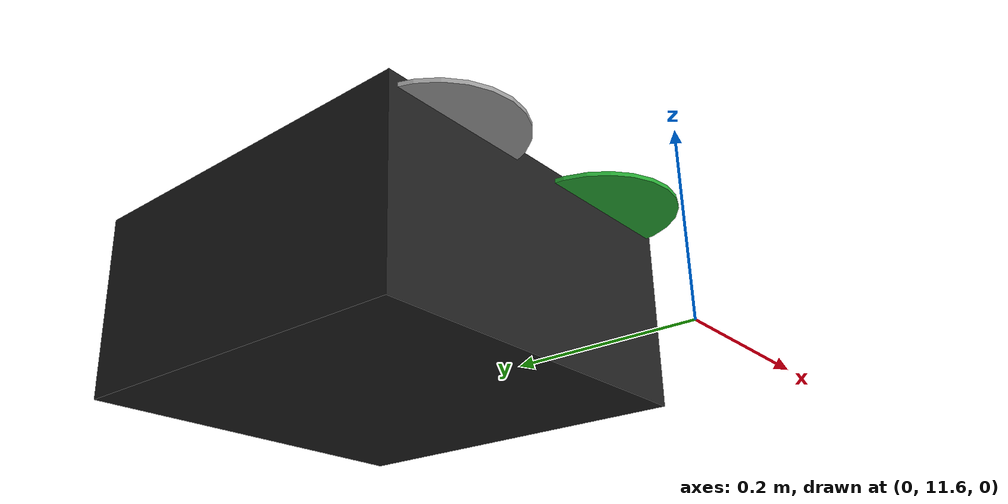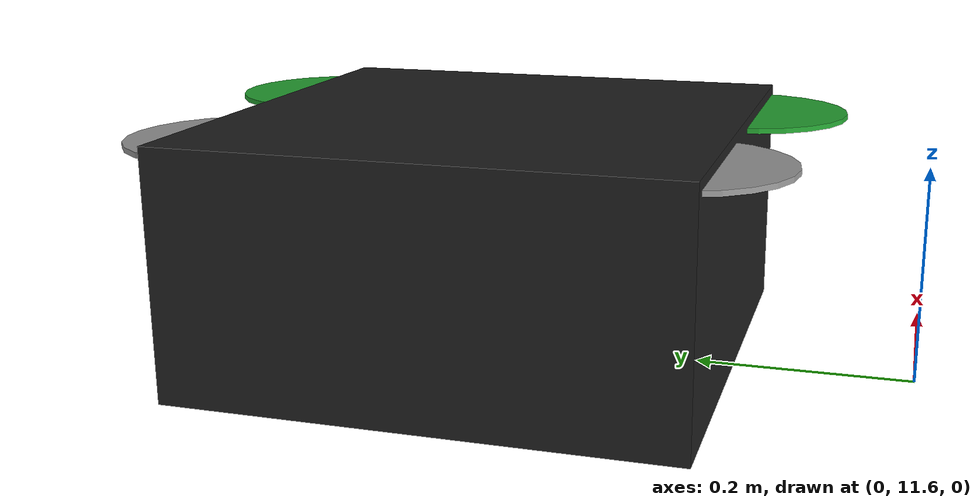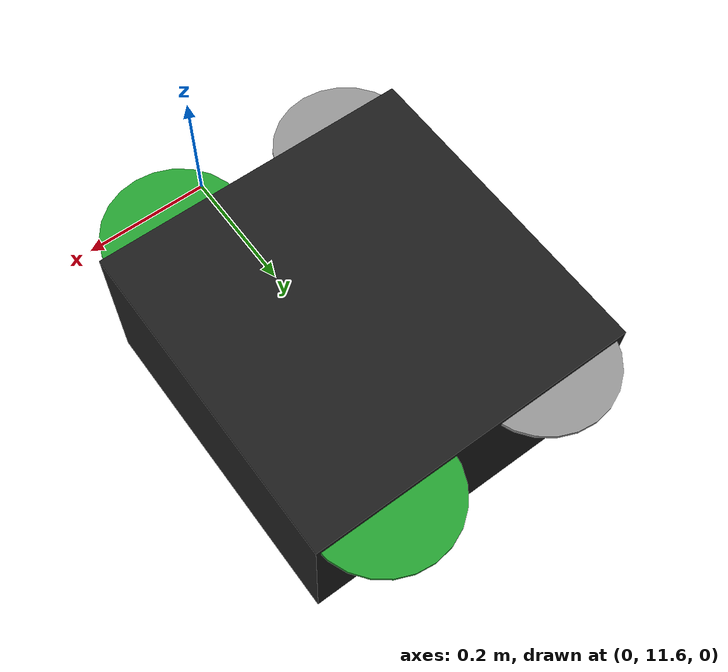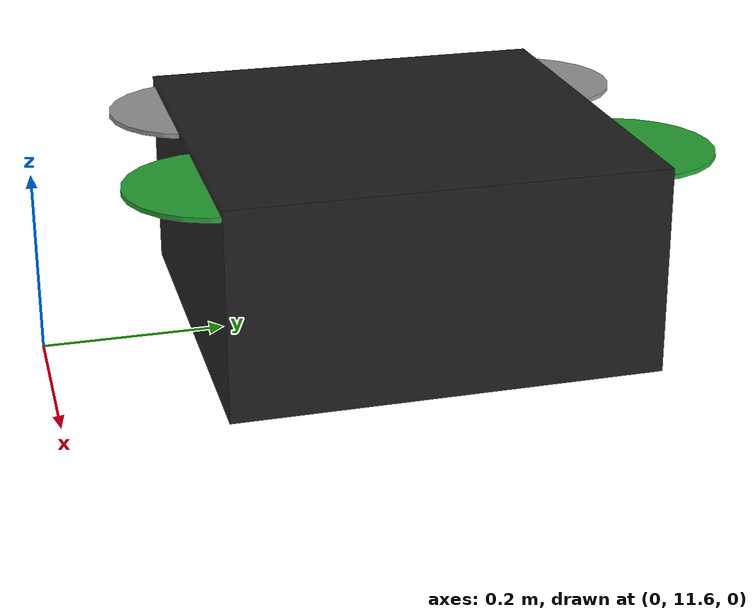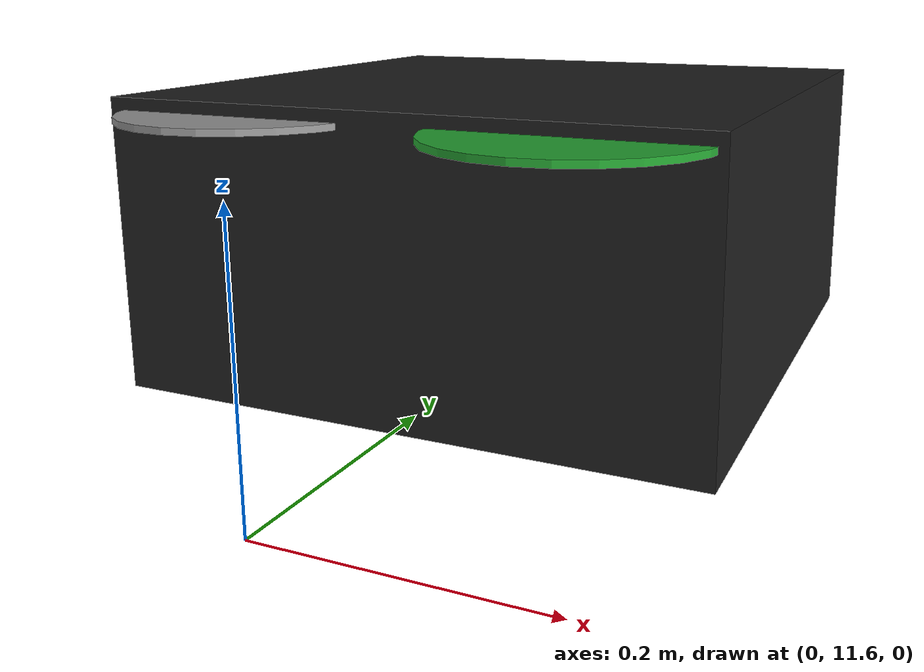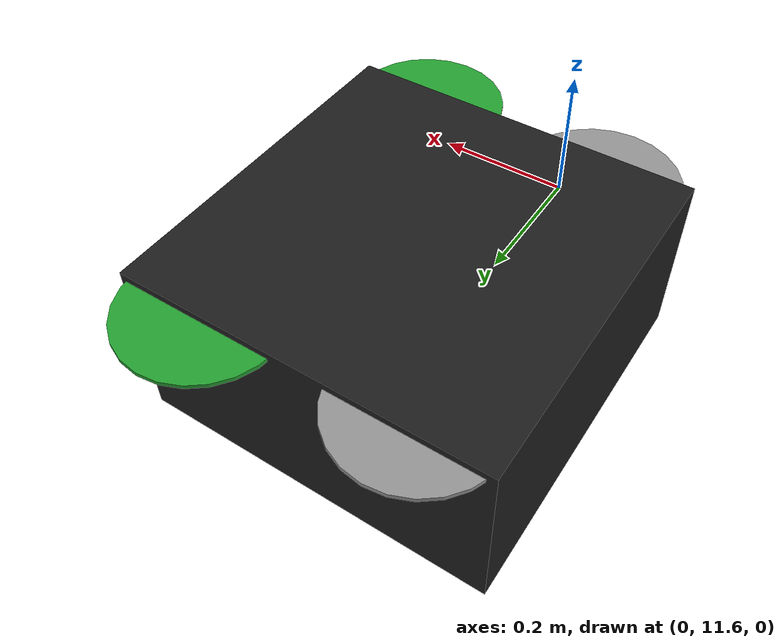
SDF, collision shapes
<?xml version='1.0'?>
<sdf version="1.6" >
  <model name="iris_demo-7">
    <include>
      <uri>model://formation/vehicle7/iris</uri>
    </include>

    <!-- plugins -->
    <plugin name="iris_demo-7-rotor_0_blade_1" filename="libLiftDragPlugin.so">
      <a0>0.3</a0>
      <alpha_stall>1.4</alpha_stall>
      <cla>4.2500</cla>
      <cda>0.10</cda>
      <cma>0.00</cma>
      <cla_stall>-0.025</cla_stall>
      <cda_stall>0.0</cda_stall>
      <cma_stall>0.0</cma_stall>
      <area>0.002</area>
      <air_density>1.2041</air_density>
      <cp>0.084 0 0</cp>
      <forward>0 1 0</forward>
      <upward>0 0 1</upward>
      <link_name>iris-7::iris-7-rotor_0</link_name>
    </plugin>
    <plugin name="iris_demo-7-rotor_0_blade_2" filename="libLiftDragPlugin.so">
      <a0>0.3</a0>
      <alpha_stall>1.4</alpha_stall>
      <cla>4.2500</cla>
      <cda>0.10</cda>
      <cma>0.00</cma>
      <cla_stall>-0.025</cla_stall>
      <cda_stall>0.0</cda_stall>
      <cma_stall>0.0</cma_stall>
      <area>0.002</area>
      <air_density>1.2041</air_density>
      <cp>-0.084 0 0</cp>
      <forward>0 -1 0</forward>
      <upward>0 0 1</upward>
      <link_name>iris-7::iris-7-rotor_0</link_name>
    </plugin>

    <plugin name="iris_demo-7-rotor_1_blade_1" filename="libLiftDragPlugin.so">
      <a0>0.3</a0>
      <alpha_stall>1.4</alpha_stall>
      <cla>4.2500</cla>
      <cda>0.10</cda>
      <cma>0.00</cma>
      <cla_stall>-0.025</cla_stall>
      <cda_stall>0.0</cda_stall>
      <cma_stall>0.0</cma_stall>
      <area>0.002</area>
      <air_density>1.2041</air_density>
      <cp>0.084 0 0</cp>
      <forward>0 1 0</forward>
      <upward>0 0 1</upward>
      <link_name>iris-7::iris-7-rotor_1</link_name>
    </plugin>
    <plugin name="iris_demo-7-rotor_1_blade_2" filename="libLiftDragPlugin.so">
      <a0>0.3</a0>
      <alpha_stall>1.4</alpha_stall>
      <cla>4.2500</cla>
      <cda>0.10</cda>
      <cma>0.00</cma>
      <cla_stall>-0.025</cla_stall>
      <cda_stall>0.0</cda_stall>
      <cma_stall>0.0</cma_stall>
      <area>0.002</area>
      <air_density>1.2041</air_density>
      <cp>-0.084 0 0</cp>
      <forward>0 -1 0</forward>
      <upward>0 0 1</upward>
      <link_name>iris-7::iris-7-rotor_1</link_name>
    </plugin>

    <plugin name="iris_demo-7-rotor_2_blade_1" filename="libLiftDragPlugin.so">
      <a0>0.3</a0>
      <alpha_stall>1.4</alpha_stall>
      <cla>4.2500</cla>
      <cda>0.10</cda>
      <cma>0.00</cma>
      <cla_stall>-0.025</cla_stall>
      <cda_stall>0.0</cda_stall>
      <cma_stall>0.0</cma_stall>
      <area>0.002</area>
      <air_density>1.2041</air_density>
      <cp>0.084 0 0</cp>
      <forward>0 -1 0</forward>
      <upward>0 0 1</upward>
      <link_name>iris-7::iris-7-rotor_2</link_name>
    </plugin>
    <plugin name="iris_demo-7-rotor_2_blade_2" filename="libLiftDragPlugin.so">
      <a0>0.3</a0>
      <alpha_stall>1.4</alpha_stall>
      <cla>4.2500</cla>
      <cda>0.10</cda>
      <cma>0.00</cma>
      <cla_stall>-0.025</cla_stall>
      <cda_stall>0.0</cda_stall>
      <cma_stall>0.0</cma_stall>
      <area>0.002</area>
      <air_density>1.2041</air_density>
      <cp>-0.084 0 0</cp>
      <forward>0 1 0</forward>
      <upward>0 0 1</upward>
      <link_name>iris-7::iris-7-rotor_2</link_name>
    </plugin>

    <plugin name="iris_demo-7-rotor_3_blade_1" filename="libLiftDragPlugin.so">
      <a0>0.3</a0>
      <alpha_stall>1.4</alpha_stall>
      <cla>4.2500</cla>
      <cda>0.10</cda>
      <cma>0.00</cma>
      <cla_stall>-0.025</cla_stall>
      <cda_stall>0.0</cda_stall>
      <cma_stall>0.0</cma_stall>
      <area>0.002</area>
      <air_density>1.2041</air_density>
      <cp>0.084 0 0</cp>
      <forward>0 -1 0</forward>
      <upward>0 0 1</upward>
      <link_name>iris-7::iris-7-rotor_3</link_name>
    </plugin>
    <plugin name="iris_demo-7-rotor_3_blade_2" filename="libLiftDragPlugin.so">
      <a0>0.3</a0>
      <alpha_stall>1.4</alpha_stall>
      <cla>4.2500</cla>
      <cda>0.10</cda>
      <cma>0.00</cma>
      <cla_stall>-0.025</cla_stall>
      <cda_stall>0.0</cda_stall>
      <cma_stall>0.0</cma_stall>
      <area>0.002</area>
      <air_density>1.2041</air_density>
      <cp>-0.084 0 0</cp>
      <forward>0 1 0</forward>
      <upward>0 0 1</upward>
      <link_name>iris-7::iris-7-rotor_3</link_name>
    </plugin>
    <plugin name="iris_demo-7-arducopter_plugin" filename="libArduPilotPlugin.so">
      <fdm_addr>127.0.0.1</fdm_addr>
      <fdm_port_in>9062</fdm_port_in>
      <fdm_port_out>9063</fdm_port_out>
      <!--
          Require by APM :
          Only change model and gazebo from XYZ to XY-Z coordinates
      -->
      <modelXYZToAirplaneXForwardZDown>0 12 0 3.141593 0 0</modelXYZToAirplaneXForwardZDown>
      <gazeboXYZToNED>0 -12 0 3.141593 0 0</gazeboXYZToNED>
      <imuName>iris_demo-7::iris-7::iris-7/imu_link::iris-7-imu_sensor</imuName>
      <connectionTimeoutMaxCount>5</connectionTimeoutMaxCount>
      <control channel="0">
      <!--
          incoming control command [0, 1]
          so offset it by 0 to get [0, 1]
          and divide max target by 1.
          offset = 0
          multiplier = 838 max rpm / 1 = 838
        -->
        <type>VELOCITY</type>
        <offset>0</offset>
        <p_gain>0.20</p_gain>
        <i_gain>0</i_gain>
        <d_gain>0</d_gain>
        <i_max>0</i_max>
        <i_min>0</i_min>
        <cmd_max>2.5</cmd_max>
        <cmd_min>-2.5</cmd_min>
        <jointName>iris-7::iris-7-rotor_0_joint</jointName>
        <multiplier>838</multiplier>
        <controlVelocitySlowdownSim>1</controlVelocitySlowdownSim>
      </control>
      <control channel="1">
        <type>VELOCITY</type>
        <offset>0</offset>
        <p_gain>0.20</p_gain>
        <i_gain>0</i_gain>
        <d_gain>0</d_gain>
        <i_max>0</i_max>
        <i_min>0</i_min>
        <cmd_max>2.5</cmd_max>
        <cmd_min>-2.5</cmd_min>
        <jointName>iris-7::iris-7-rotor_1_joint</jointName>
        <multiplier>838</multiplier>
        <controlVelocitySlowdownSim>1</controlVelocitySlowdownSim>
      </control>
      <control channel="2">
        <type>VELOCITY</type>
        <offset>0</offset>
        <p_gain>0.20</p_gain>
        <i_gain>0</i_gain>
        <d_gain>0</d_gain>
        <i_max>0</i_max>
        <i_min>0</i_min>
        <cmd_max>2.5</cmd_max>
        <cmd_min>-2.5</cmd_min>
        <jointName>iris-7::iris-7-rotor_2_joint</jointName>
        <multiplier>-838</multiplier>
        <controlVelocitySlowdownSim>1</controlVelocitySlowdownSim>
      </control>
      <control channel="3">
        <type>VELOCITY</type>
        <offset>0</offset>
        <p_gain>0.20</p_gain>
        <i_gain>0</i_gain>
        <d_gain>0</d_gain>
        <i_max>0</i_max>
        <i_min>0</i_min>
        <cmd_max>2.5</cmd_max>
        <cmd_min>-2.5</cmd_min>
        <jointName>iris-7::iris-7-rotor_3_joint</jointName>
        <multiplier>-838</multiplier>
        <controlVelocitySlowdownSim>1</controlVelocitySlowdownSim>
      </control>
    </plugin>

  </model>
</sdf>

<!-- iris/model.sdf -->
<sdf version='1.5'>
  <model name='iris-7'>
    <pose>0 12 0.194923 0 0 0</pose>
    <link name='iris-7-base_link'>
      <velocity_decay>
        <linear>0.0</linear>
        <angular>0.0</angular>
      </velocity_decay>
      <inertial>
        <pose>0 0 0 0 0 0</pose>
        <mass>1.5</mass>
        <inertia>
          <ixx>0.008</ixx>
          <ixy>0</ixy>
          <ixz>0</ixz>
          <iyy>0.015</iyy>
          <iyz>0</iyz>
          <izz>0.017</izz>
        </inertia>
      </inertial>
      <collision name='iris-7-base_link_collision'>
        <pose>0 0 -0.08 0 0 0</pose>
        <geometry>
          <box>
            <size>0.47 0.47 0.23</size>
          </box>
        </geometry>
        <surface>
          <contact>
            <ode>
              <max_vel>100.0</max_vel>
              <min_depth>0.001</min_depth>
            </ode>
          </contact>
          <friction>
            <ode>
              <mu>100000.0</mu>
              <mu2>100000.0</mu2>
            </ode>
          </friction>
        </surface>
      </collision>
      <visual name='iris-7-base_link_visual'>
        <geometry>
          <mesh>
            <uri>model://formation/vehicle7/iris/meshes/iris.dae</uri>
          </mesh>
        </geometry>
        <material>
          <script>
            <name>Gazebo/Black</name>
          </script>
        </material>
      </visual>

      <visual name='iris-7-front_left_leg_visual'>
        <pose>0.123 0.22 -0.11 0 0 0</pose>
        <geometry>
          <cylinder>
            <radius>0.005</radius>
            <length>0.17</length>
          </cylinder>
        </geometry>
        <material>
          <script>
            <name>Gazebo/FlatBlack</name>
            <uri>file://media/materials/scripts/gazebo.material</uri>
          </script>
        </material>
      </visual>
      <visual name='iris-7-front_right_leg_visual'>
        <pose>0.123 -0.22 -0.11 0 0 0</pose>
        <geometry>
          <cylinder>
            <radius>0.005</radius>
            <length>0.17</length>
          </cylinder>
        </geometry>
        <material>
          <script>
            <name>Gazebo/FlatBlack</name>
            <uri>file://media/materials/scripts/gazebo.material</uri>
          </script>
        </material>
      </visual>
      <visual name='iris-7-rear_left_leg_visual'>
        <pose>-0.140 0.21 -0.11 0 0 0</pose>
        <geometry>
          <cylinder>
            <radius>0.005</radius>
            <length>0.17</length>
          </cylinder>
        </geometry>
        <material>
          <script>
            <name>Gazebo/FlatBlack</name>
            <uri>file://media/materials/scripts/gazebo.material</uri>
          </script>
        </material>
      </visual>
      <visual name='iris-7-rear_right_leg_visual'>
        <pose>-0.140 -0.21 -0.11 0 0 0</pose>
        <geometry>
          <cylinder>
            <radius>0.005</radius>
            <length>0.17</length>
          </cylinder>
        </geometry>
        <material>
          <script>
            <name>Gazebo/FlatBlack</name>
            <uri>file://media/materials/scripts/gazebo.material</uri>
          </script>
        </material>
      </visual>
    </link>
    <link name='iris-7/ground_truth/odometry_sensorgt_link'>
      <pose>0 0 0 0 -0 0</pose>
      <inertial>
        <pose>0 0 0 0 -0 0</pose>
        <mass>0.15</mass>
        <inertia>
          <ixx>0.0001</ixx>
          <ixy>0</ixy>
          <ixz>0</ixz>
          <iyy>0.0002</iyy>
          <iyz>0</iyz>
          <izz>0.0002</izz>
        </inertia>
      </inertial>
    </link>
    <joint name='iris-7/ground_truth/odometry_sensorgt_joint' type='revolute'>
      <child>iris-7/ground_truth/odometry_sensorgt_link</child>
      <parent>iris-7-base_link</parent>
      <axis>
        <xyz>0 0 1</xyz>
        <limit>
          <lower>0</lower>
          <upper>0</upper>
          <effort>0</effort>
          <velocity>0</velocity>
        </limit>
        <dynamics>
          <damping>1.0</damping>
        </dynamics>
        <use_parent_model_frame>1</use_parent_model_frame>
      </axis>
      <physics>
        <ode>
          <implicit_spring_damper>1</implicit_spring_damper>
        </ode>
      </physics>
    </joint>
    <link name='iris-7/imu_link'>
      <inertial>
        <pose>0 0 0 0 0 0</pose>
        <mass>0.15</mass>
        <inertia>
          <ixx>0.00001</ixx>
          <ixy>0</ixy>
          <ixz>0</ixz>
          <iyy>0.00002</iyy>
          <iyz>0</iyz>
          <izz>0.00002</izz>
        </inertia>
      </inertial>
      <sensor name="iris-7-imu_sensor" type="imu">
        <pose>0 0 0 3.141593 0 0</pose>
        <always_on>1</always_on>
        <update_rate>1000.0</update_rate>
      </sensor>
    </link>
    <joint name='iris-7/imu_joint' type='revolute'>
      <child>iris-7/imu_link</child>
      <parent>iris-7-base_link</parent>
      <axis>
        <xyz>0 0 1</xyz>
        <limit>
          <lower>0</lower>
          <upper>0</upper>
          <effort>0</effort>
          <velocity>0</velocity>
        </limit>
        <dynamics>
          <damping>1.0</damping>
        </dynamics>
        <use_parent_model_frame>1</use_parent_model_frame>
      </axis>
      <physics>
        <ode>
          <implicit_spring_damper>1</implicit_spring_damper>
        </ode>
      </physics>
    </joint>
    <link name='iris-7-rotor_0'>
      <pose>0.13 -0.22 0.023 0 -0 0</pose>
      <inertial>
        <pose>0 0 0 0 -0 0</pose>
        <mass>0.025</mass>
        <inertia>
          <ixx>9.75e-06</ixx>
          <ixy>0</ixy>
          <ixz>0</ixz>
          <iyy>0.000166704</iyy>
          <iyz>0</iyz>
          <izz>0.000167604</izz>
        </inertia>
      </inertial>
      <collision name='iris-7-rotor_0_collision'>
        <pose>0 0 0 0 -0 0</pose>
        <geometry>
          <cylinder>
            <length>0.005</length>
            <radius>0.1</radius>
          </cylinder>
        </geometry>
        <surface>
          <contact>
            <ode/>
          </contact>
          <friction>
            <ode/>
          </friction>
        </surface>
      </collision>
      <visual name='iris-7-rotor_0_visual'>
        <pose>0 0 0 0 -0 0</pose>
        <geometry>
          <mesh>
            <scale>1 1 1</scale>
            <uri>model://formation/vehicle7/iris/meshes/iris_prop_ccw.dae</uri>
          </mesh>
        </geometry>
        <material>
          <script>
            <name>Gazebo/Green</name>
            <uri>__default__</uri>
          </script>
        </material>
      </visual>
      <gravity>1</gravity>
      <velocity_decay/>
      <self_collide>0</self_collide>
    </link>
    <joint name='iris-7-rotor_0_joint' type='revolute'>
      <child>iris-7-rotor_0</child>
      <parent>iris-7-base_link</parent>
      <axis>
        <xyz>0 0 1</xyz>
        <limit>
          <lower>-1e+16</lower>
          <upper>1e+16</upper>
        </limit>
        <dynamics>
          <damping>0.004</damping>
        </dynamics>
        <use_parent_model_frame>1</use_parent_model_frame>
      </axis>
      <physics>
        <ode>
          <implicit_spring_damper>1</implicit_spring_damper>
        </ode>
      </physics>
    </joint>
    <link name='iris-7-rotor_1'>
      <pose>-0.13 0.2 0.023 0 -0 0</pose>
      <inertial>
        <pose>0 0 0 0 -0 0</pose>
        <mass>0.025</mass>
        <inertia>
          <ixx>9.75e-06</ixx>
          <ixy>0</ixy>
          <ixz>0</ixz>
          <iyy>0.000166704</iyy>
          <iyz>0</iyz>
          <izz>0.000167604</izz>
        </inertia>
      </inertial>
      <collision name='iris-7-rotor_1_collision'>
        <pose>0 0 0 0 -0 0</pose>
        <geometry>
          <cylinder>
            <length>0.005</length>
            <radius>0.1</radius>
          </cylinder>
        </geometry>
        <surface>
          <contact>
            <ode/>
          </contact>
          <friction>
            <ode/>
          </friction>
        </surface>
      </collision>
      <visual name='iris-7-rotor_1_visual'>
        <pose>0 0 0 0 -0 0</pose>
        <geometry>
          <mesh>
            <scale>1 1 1</scale>
            <uri>model://formation/vehicle7/iris/meshes/iris_prop_ccw.dae</uri>
          </mesh>
        </geometry>
        <material>
          <script>
            <name>Gazebo/Grey</name>
            <uri>__default__</uri>
          </script>
        </material>
      </visual>
      <gravity>1</gravity>
      <velocity_decay/>
      <self_collide>0</self_collide>
    </link>
    <joint name='iris-7-rotor_1_joint' type='revolute'>
      <child>iris-7-rotor_1</child>
      <parent>iris-7-base_link</parent>
      <axis>
        <xyz>0 0 1</xyz>
        <limit>
          <lower>-1e+16</lower>
          <upper>1e+16</upper>
        </limit>
        <dynamics>
          <damping>0.004</damping>
        </dynamics>
        <use_parent_model_frame>1</use_parent_model_frame>
      </axis>
      <physics>
        <ode>
          <implicit_spring_damper>1</implicit_spring_damper>
        </ode>
      </physics>
    </joint>
    <link name='iris-7-rotor_2'>
      <pose>0.13 0.22 0.023 0 -0 0</pose>
      <inertial>
        <pose>0 0 0 0 -0 0</pose>
        <mass>0.025</mass>
        <inertia>
          <ixx>9.75e-06</ixx>
          <ixy>0</ixy>
          <ixz>0</ixz>
          <iyy>0.000166704</iyy>
          <iyz>0</iyz>
          <izz>0.000167604</izz>
        </inertia>
      </inertial>
      <collision name='iris-7-rotor_2_collision'>
        <pose>0 0 0 0 -0 0</pose>
        <geometry>
          <cylinder>
            <length>0.005</length>
            <radius>0.1</radius>
          </cylinder>
        </geometry>
        <surface>
          <contact>
            <ode/>
          </contact>
          <friction>
            <ode/>
          </friction>
        </surface>
      </collision>
      <visual name='iris-7-rotor_2_visual'>
        <pose>0 0 0 0 -0 0</pose>
        <geometry>
          <mesh>
            <scale>1 1 1</scale>
            <uri>model://formation/vehicle7/iris/meshes/iris_prop_cw.dae</uri>
          </mesh>
        </geometry>
        <material>
          <script>
            <name>Gazebo/Green</name>
            <uri>__default__</uri>
          </script>
        </material>
      </visual>
      <gravity>1</gravity>
      <velocity_decay/>
      <self_collide>0</self_collide>
    </link>
    <joint name='iris-7-rotor_2_joint' type='revolute'>
      <child>iris-7-rotor_2</child>
      <parent>iris-7-base_link</parent>
      <axis>
        <xyz>0 0 1</xyz>
        <limit>
          <lower>-1e+16</lower>
          <upper>1e+16</upper>
        </limit>
        <dynamics>
          <damping>0.004</damping>
        </dynamics>
        <use_parent_model_frame>1</use_parent_model_frame>
      </axis>
      <physics>
        <ode>
          <implicit_spring_damper>1</implicit_spring_damper>
        </ode>
      </physics>
    </joint>
    <link name='iris-7-rotor_3'>
      <pose>-0.13 -0.2 0.023 0 -0 0</pose>
      <inertial>
        <pose>0 0 0 0 -0 0</pose>
        <mass>0.025</mass>
        <inertia>
          <ixx>9.75e-06</ixx>
          <ixy>0</ixy>
          <ixz>0</ixz>
          <iyy>0.000166704</iyy>
          <iyz>0</iyz>
          <izz>0.000167604</izz>
        </inertia>
      </inertial>
      <collision name='iris-7-rotor_3_collision'>
        <pose>0 0 0 0 -0 0</pose>
        <geometry>
          <cylinder>
            <length>0.005</length>
            <radius>0.1</radius>
          </cylinder>
        </geometry>
        <surface>
          <contact>
            <ode/>
          </contact>
          <friction>
            <ode/>
          </friction>
        </surface>
      </collision>
      <visual name='iris-7-rotor_3_visual'>
        <pose>0 0 0 0 -0 0</pose>
        <geometry>
          <mesh>
            <scale>1 1 1</scale>
            <uri>model://formation/vehicle7/iris/meshes/iris_prop_cw.dae</uri>
          </mesh>
        </geometry>
        <material>
          <script>
            <name>Gazebo/Grey</name>
            <uri>__default__</uri>
          </script>
        </material>
      </visual>
      <gravity>1</gravity>
      <velocity_decay/>
      <self_collide>0</self_collide>
    </link>
    <joint name='iris-7-rotor_3_joint' type='revolute'>
      <child>iris-7-rotor_3</child>
      <parent>iris-7-base_link</parent>
      <axis>
        <xyz>0 0 1</xyz>
        <limit>
          <lower>-1e+16</lower>
          <upper>1e+16</upper>
        </limit>
        <dynamics>
          <damping>0.004</damping>
        </dynamics>
        <use_parent_model_frame>1</use_parent_model_frame>
      </axis>
      <physics>
        <ode>
          <implicit_spring_damper>1</implicit_spring_damper>
        </ode>
      </physics>
    </joint>
    <static>0</static>
  </model>
</sdf>
